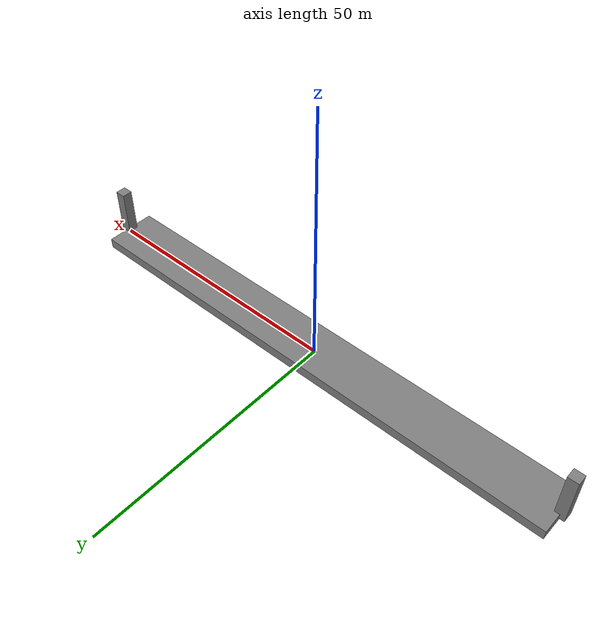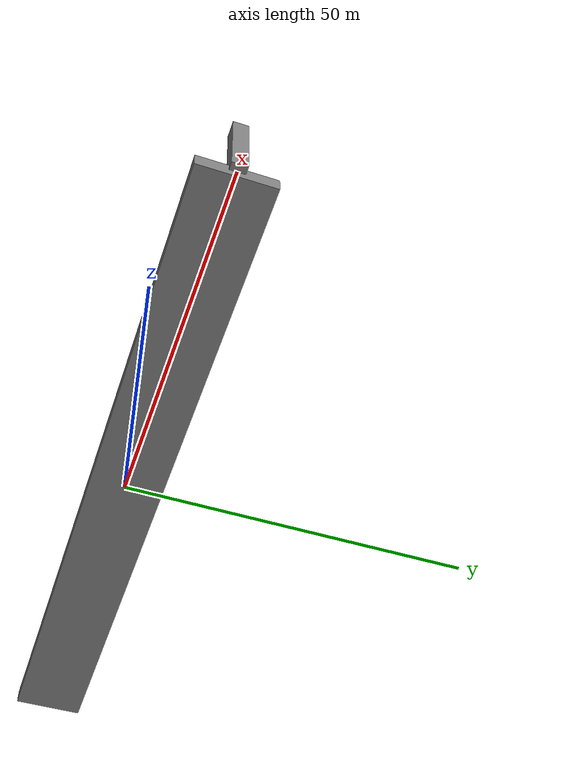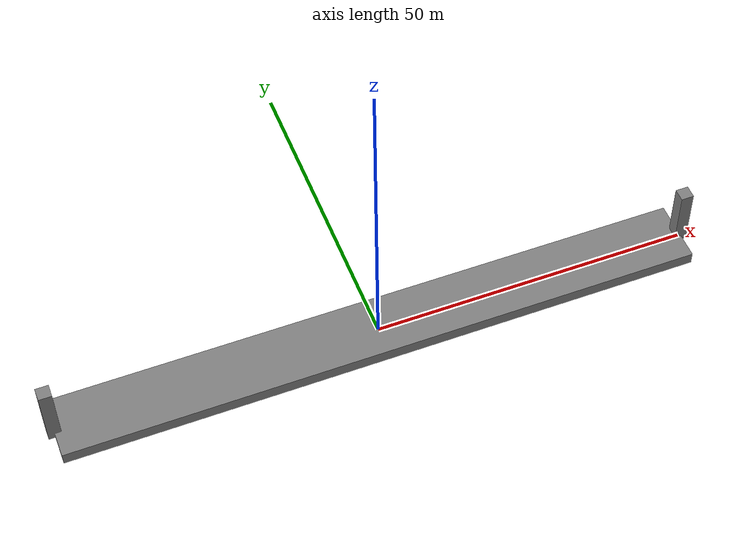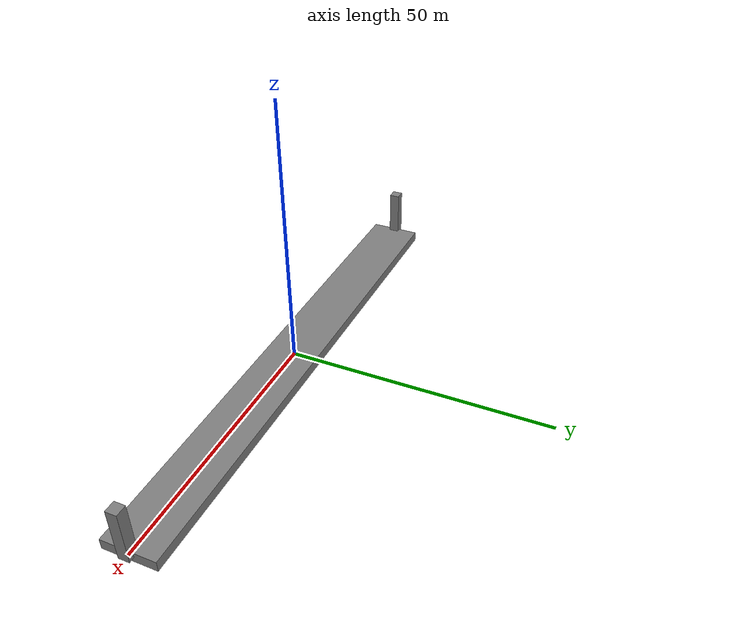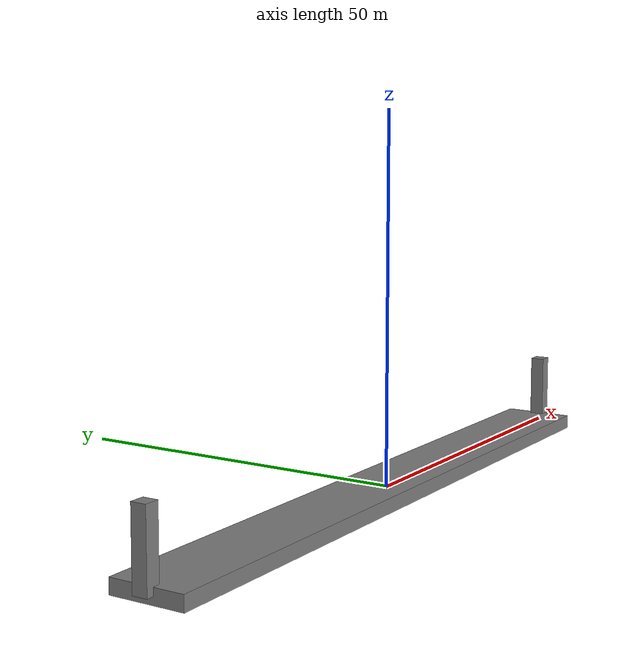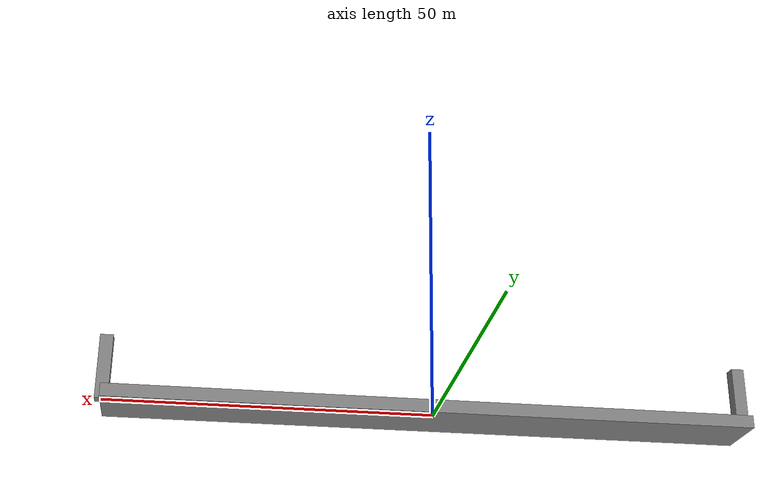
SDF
<?xml version="1.0" ?>
<sdf version="1.5">
  <model name="bridge">
    <static>true</static>

    <link name="bridge_deck">
      <pose>0 0 0 0 0 0</pose>
      <collision name="collision">
        <geometry>
          <box>
            <size>100 10 2</size>
          </box>
        </geometry>
      </collision>

      <visual name="visual">
        <geometry>
          <box>
            <size>100 10 2</size>
          </box>
        </geometry>
        <material>
          <ambient>0.5 0.5 0.5 1</ambient>
          <diffuse>0.5 0.5 0.5 1</diffuse>
          <specular>0.1 0.1 0.1 1</specular>
          <emissive>0 0 0 1</emissive>
        </material>
      </visual>
    </link>

    <link name="bridge_left_pillar">
      <pose>-50 0 5 0 0 0</pose>
      <collision name="collision">
        <geometry>
          <box>
            <size>2 2 10</size>
          </box>
        </geometry>
      </collision>

      <visual name="visual">
        <geometry>
          <box>
            <size>2 2 10</size>
          </box>
        </geometry>
        <material>
          <ambient>0.5 0.5 0.5 1</ambient>
          <diffuse>0.5 0.5 0.5 1</diffuse>
          <specular>0.1 0.1 0.1 1</specular>
          <emissive>0 0 0 1</emissive>
        </material>
      </visual>
    </link>

    <link name="bridge_right_pillar">
      <pose>50 0 5 0 0 0</pose>
      <collision name="collision">
        <geometry>
          <box>
            <size>2 2 10</size>
          </box>
        </geometry>
      </collision>

      <visual name="visual">
        <geometry>
          <box>
            <size>2 2 10</size>
          </box>
        </geometry>
        <material>
          <ambient>0.5 0.5 0.5 1</ambient>
          <diffuse>0.5 0.5 0.5 1</diffuse>
          <specular>0.1 0.1 0.1 1</specular>
          <emissive>0 0 0 1</emissive>
        </material>
      </visual>
    </link>
  </model>
</sdf>
